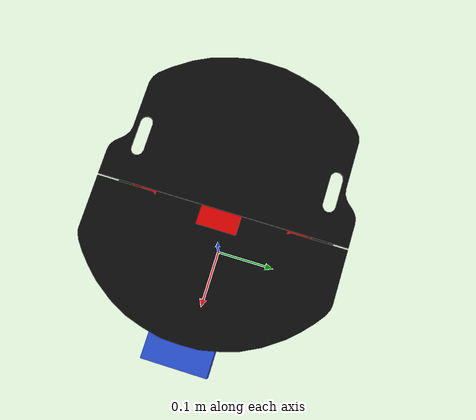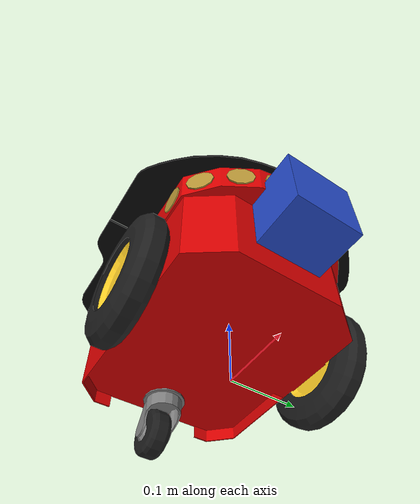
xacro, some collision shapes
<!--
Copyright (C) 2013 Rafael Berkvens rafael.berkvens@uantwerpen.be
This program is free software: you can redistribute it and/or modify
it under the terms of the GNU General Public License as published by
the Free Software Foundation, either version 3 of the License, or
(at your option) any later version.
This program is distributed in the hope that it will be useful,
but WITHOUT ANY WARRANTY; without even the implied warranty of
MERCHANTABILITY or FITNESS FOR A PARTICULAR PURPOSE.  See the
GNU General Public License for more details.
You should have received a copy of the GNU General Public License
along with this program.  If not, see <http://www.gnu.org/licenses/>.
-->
<?xml version="1.0"?>

<robot name="pioneer3dx"
	xmlns:xacro="http://ros.org/wiki/xacro">

	<!-- import all gazebo-customization elements, including gazebo colors -->
	<xacro:include filename="$(find node_counting_alg)/urdf/pioneer3dx-v2.gazebo" />
	<xacro:include filename="$(find node_counting_alg)/urdf/components.gazebo"/>
	<xacro:include filename="$(find node_counting_alg)/urdf/materials.xacro" />

	<!-- import the pioneer 3dx's wheels -->
	<xacro:include filename="$(find p3dx_description)/urdf/pioneer3dx_wheel.xacro" />

	<!-- chassis -->
	<link name="base_link">
		<inertial>
			<mass value="3.5" />
			<origin xyz="-0.05 0 0" />
			<inertia ixx="1" ixy="0" ixz="0" iyy="1" iyz="0" izz="1" />
		</inertial>

		<visual name="base_visual">
			<origin xyz="-0.045 0 0.148" rpy="0 0 0" />
			<geometry name="pioneer_geom">
				<mesh filename="package://p3dx_description/meshes/chassis.dae" />
			</geometry>
			<material name="ChassisRed">
				<color rgba="0.851 0.0 0.0 1.0" />
			</material>
		</visual>

		<collision>
			<origin xyz="-0.045 0 0.145" rpy="0 0 0" />
			<geometry>
				<box size="0.35 0.25 0.14" />
			</geometry>
		</collision>
	</link>

	<!-- top_plate -->
	<link name="top_plate">
		<inertial>
			<mass value="0.01" />
			<origin xyz="0 0 0" />
			<inertia ixx="1" ixy="0" ixz="0" iyy="1" iyz="0" izz="1" />
		</inertial>

		<visual name="base_visual">
			<origin xyz="0 0 0" rpy="0 0 0" />
			<geometry name="top_geom">
				<mesh filename="package://p3dx_description/meshes/top.dae" />
			</geometry>

			<material name="TopBlack">
				<color rgba="0.038 0.038 0.038 1.0" />
			</material>
		</visual>

		<collision>
			<origin xyz="0.0 0 0" rpy="0 0 0" />
			<geometry name="pioneer_geom">
				<box size="0.45 0.38 0.01" />
			</geometry>
		</collision>
	</link>

	<joint name="base_top_joint" type="fixed">
		<origin xyz="-0.045 0 0.234" rpy="0 0 0" />
		<parent link="base_link" />
		<child link="top_plate" />
	</joint>

	<!-- swivel -->
	<link name="swivel">
		<inertial>
			<mass value="0.1" />
			<origin xyz="0 0 0" />
			<inertia ixx="0.01" ixy="0" ixz="0" iyy="0.01" iyz="0" izz="0.01" />
		</inertial>

		<visual name="base_visual">
			<origin xyz="0 0 0" rpy="0 0 0" />
			<geometry name="pioneer_geom">
				<mesh filename="package://p3dx_description/meshes/swivel.dae" />
			</geometry>
			<material name="swivel">
				<color rgba="0.5 0.5 0.5 1" />
			</material>
		</visual>

		<collision>
			<origin xyz="0 0 0" rpy="0 0 0" />
			<geometry>
				<box size="0 0 0" />
			</geometry>
		</collision>
	</link>

	<joint name="base_swivel_joint" type="continuous">
		<origin xyz="-0.185 0 0.055" rpy="0 0 0" />
		<axis xyz="0 0 1" />
		<anchor xyz="0 0 0" />
		<limit effort="100" velocity="100" k_velocity="0" />
		<joint_properties damping="0.0" friction="0.0" />
		<parent link="base_link" />
		<child link="swivel" />
	</joint>

	<!-- center_hubcap -->
	<link name="center_hubcap">
		<inertial>
			<mass value="0.01" />
			<origin xyz="0 0 0" />
			<inertia ixx="0.012411765597" ixy="-0.000711733678" ixz="0.00050272983" iyy="0.015218160428" iyz="-0.000004273467" izz="0.011763977943" />
		</inertial>

		<visual name="base_visual">
			<origin xyz="0 0 0" rpy="0 0 0" />
			<geometry name="pioneer_geom">
				<mesh filename="package://p3dx_description/meshes/center_hubcap.dae" />
			</geometry>
			<material name="swivel">
				<color rgba="0.5 0.5 0.5 1" />
			</material>
		</visual>

		<collision>
			<origin xyz="0 0 0" rpy="0 0 0" />
			<geometry>
				<box size="0 0 0" />
			</geometry>
		</collision>
	</link>

	<joint name="swivel_hubcap_joint" type="continuous">
		<origin xyz="-0.026 0 -0.016" rpy="0 0 0" />
		<axis xyz="0 1 0" />
		<anchor xyz="0 0 0" />
		<limit effort="100" velocity="100" k_velocity="0" />
		<joint_properties damping="0.0" friction="0.0" />
		<parent link="swivel" />
		<child link="center_wheel" />
	</joint>

	<!-- center_wheel -->
	<link name="center_wheel">
		<inertial>
			<mass value="0.1" />
			<origin xyz="0 0 0" />
			<inertia ixx="0.012411765597" ixy="-0.000711733678" ixz="0.00050272983" iyy="0.015218160428" iyz="-0.000004273467" izz="0.011763977943" />
		</inertial>

		<visual name="base_visual">
			<origin xyz="0 0 0" rpy="0 0 0" />
			<geometry name="pioneer_geom">
				<mesh filename="package://p3dx_description/meshes/center_wheel.dae" />
			</geometry>
			<material name="WheelBlack">
				<color rgba="0.117 0.117 0.117 1" />
			</material>
		</visual>

		<collision>
			<origin xyz="0 0 0" rpy="${-3.1415927/2.0} 0 0" />
			<geometry>
				<cylinder radius="0.0375" length="0.01" />
			</geometry>
		</collision>
	</link>

	<joint name="center_wheel_joint" type="fixed">
		<origin xyz="-0.0035 0 -0.001" rpy="0 0 0"/>
		<parent link="center_wheel"/>
		<child link="center_hubcap"/>
	</joint>

	<xacro:p3dx_wheel suffix="left" parent="base_link" reflect="1"/>
	<xacro:p3dx_wheel suffix="right" parent="base_link" reflect="-1"/>

	<!-- front_sonar -->
	<link name="front_sonar">
		<inertial>
			<mass value="0.0001" />
			<origin xyz="0 0 0" />
			<inertia ixx="1" ixy="0" ixz="0" iyy="1" iyz="0" izz="1" />
		</inertial>

		<visual name="front_sonar_vis">
			<origin rpy="0 0 0" xyz="0 0 0" />
			<geometry name="pioneer_geom">
				<mesh filename="package://p3dx_description/meshes/front_sonar.dae" />
			</geometry>
			<material name="SonarYellow">
				<color rgba="0.715 0.583 0.210 1.0" />
			</material>
		</visual>

		<collision>
			<origin rpy="0 0 0" xyz="0 0 0" />
			<geometry>
				<box size="0 0 0" />
			</geometry>
		</collision>
	</link>

	<joint name="base_front_joint" type="fixed">
		<origin rpy="0 0 0" xyz="0.109 0 0.209" />
		<parent link="base_link" />
		<child link="front_sonar" />
	</joint>

	<!-- laser -->
	<link name="laser_link">
		<inertial>
			<mass value="1e-5" />
			<origin xyz="0 0 0" rpy="0 0 0" />
			<inertia ixx="1e-6" ixy="0" ixz="0" iyy="1e-6" iyz="0" izz="1e-6" />
		</inertial>

		<visual>
			<origin xyz="0 0 0" rpy="0 0 0" />
			<geometry>
				<mesh filename="package://p3dx_description/meshes/lms100.dae" />
			</geometry>
		</visual>

		<collision>
			<origin xyz="0 0 0" rpy="0 0 0" />
			<geometry>
				<box size="0.1 0.1 0.1" />
			</geometry>
		</collision>
	</link>

	<joint name="laser_joint" type="fixed">
		<axis xyz="0 1 0" />
		<origin xyz="0.16 0 0.15" rpy="0 0 0" />
		<parent link="base_link" />
		<child link="laser_link" />
	</joint>

	<xacro:laser_plugin name="front_laser" ref_link = "laser_link"/>

</robot>

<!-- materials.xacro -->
<robot>

  <material name="black">
    <color rgba="0.0 0.0 0.0 1.0"/>
  </material>
  <material name="blue">
    <color rgba="0.203125 0.23828125 0.28515625 1.0"/>
  </material>
  <material name="green">
    <color rgba="0.0 0.8 0.0 1.0"/>
  </material>
  <material name="grey">
    <color rgba="0.2 0.2 0.2 1.0"/>
  </material>
  <material name="orange">
    <color rgba="1.0 0.423529411765 0.0392156862745 1.0"/>
  </material>
  <material name="brown">
    <color rgba="0.870588235294 0.811764705882 0.764705882353 1.0"/>
  </material>
  <material name="red">
    <color rgba="0.80078125 0.12890625 0.1328125 1.0"/>
  </material>
  <material name="white">
    <color rgba="1.0 1.0 1.0 1.0"/>
  </material>

</robot>

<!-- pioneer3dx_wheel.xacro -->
<robot xmlns:xacro="http://ros.org/wiki/xacro">

	<!-- properties (constants) -->
	<property name="M_PI" value="3.14159" />

	<!-- right/left hubcap + wheel -->
	<xacro:macro name="p3dx_wheel" params="suffix parent reflect">

		<!-- wheel -->
		<link name="p3dx_${suffix}_wheel">
			<inertial>
				<mass value="0.5" />
				<origin xyz="0 0 0" />
				<inertia ixx="0.012411765597" ixy="0" ixz="0" iyy="0.015218160428"
					iyz="0" izz="0.011763977943" />
			</inertial>

			<visual name="base_visual">
				<origin xyz="0 0 0" rpy="0 0 0" />
				<geometry name="pioneer_geom">
					<mesh filename="package://p3dx_description/meshes/${suffix}_wheel.dae" />
				</geometry>
				<material name="WheelBlack">
					<color rgba="0.117 0.117 0.117 1" />
				</material>
			</visual>

			<collision>
				<origin xyz="0 0 0" rpy="${-3.1415927/2} 0 0" />
				<geometry>
					<cylinder radius="0.09" length="0.01" />
				</geometry>
			</collision>
		</link>

		<joint name="base_${suffix}_hubcap_joint" type="fixed">
			<origin xyz="0 0 0" rpy="0 0 0" />
			<parent link="p3dx_${suffix}_wheel" />
			<child link="p3dx_${suffix}_hubcap" />
		</joint>

		<!-- hubcap -->
		<link name="p3dx_${suffix}_hubcap">
			<inertial>
				<mass value="0.01" />
				<origin xyz="0 0 0" />
				<inertia ixx="0.012411765597" ixy="0" ixz="0" iyy="0.015218160428"
					iyz="0" izz="0.011763977943" />
			</inertial>

			<visual name="base_visual">
				<origin xyz="0 0 0" rpy="0 0 0" />
				<geometry name="pioneer_geom">
					<mesh filename="package://p3dx_description/meshes/${suffix}_hubcap.dae" />
				</geometry>

				<material name="HubcapYellow">
					<color rgba="1.0 0.811 0.151 1.0" />
				</material>
			</visual>

			<collision>
				<origin xyz="0 0 0" rpy="0 0 0" />
				<geometry>
					<box size="0 0 0" />
				</geometry>
			</collision>
		</link>

		<joint name="base_${suffix}_wheel_joint" type="continuous">
			<axis xyz="0 1 0" />
			<anchor xyz="0 0 0" />
			<limit effort="100" velocity="100" />
			<joint_properties damping="0.0" friction="0.0" />
			<origin xyz="0 ${reflect*0.158} 0.091" rpy="0 0 0" />
			<parent link="base_link" />
			<child link="p3dx_${suffix}_wheel" />
		</joint>

		<!-- gazebo elements -->

		<gazebo reference="p3dx_${suffix}_hubcap">
			<material>Gazebo/Yellow</material>
		</gazebo>

		<gazebo reference="p3dx_${suffix}_wheel">
			<material>Gazebo/Black</material>
			<mu1>0.5</mu1>
			<mu2>50.0</mu2>
			<kp>100000000.0</kp>
			<kd>1.0</kd>
		</gazebo>

	</xacro:macro>

</robot>
